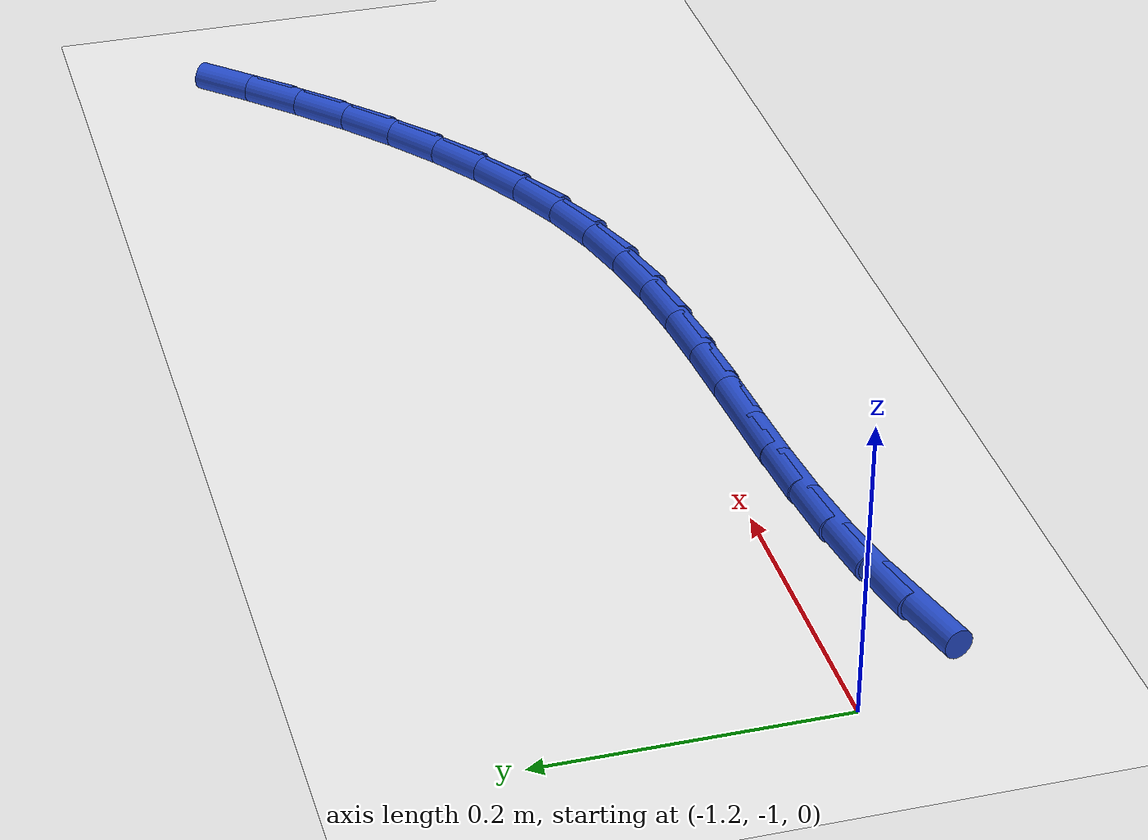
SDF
<sdf version="1.6">
 <world name="default">
  <model name="ground_plane">
   <static>1</static>
   <link name="link">
    <collision name="collision">
     <geometry><plane><normal>0 0 1</normal><size>100 100</size></plane></geometry>
     <surface><friction><ode><mu>100</mu><mu2>50</mu2></ode></friction></surface>
    </collision>
    <visual name="visual">
     <cast_shadows>0</cast_shadows>
     <geometry><plane><normal>0 0 1</normal><size>100 100</size></plane></geometry>
     <material>
      <script><uri>file://media/materials/scripts/gazebo.material</uri><name>Gazebo/WhiteGlow</name></script>
     </material>
    </visual>
   </link>
  </model>
  <model name="line">
   <link name="link_120">
    <pose>-1.1284918307968983 -1.0642170427071524 0.01 0 1.57 0.261809667981587</pose>
    <collision name="collision">
     <geometry><cylinder><radius>0.01</radius><length>0.08</length></cylinder></geometry>
    </collision>
    <visual name="visual">
     <material>
      <script><name>Gazebo/Blue</name><uri>file://media/materials/scripts/gazebo.material</uri></script>
     </material>
     <geometry><cylinder><radius>0.01</radius><length>0.08</length></cylinder></geometry>
    </visual>
   </link>
   <link name="link_121">
    <pose>-1.085188650665745 -1.0526135134340247 0.01 0 1.57 0.201005334930292</pose>
    <collision name="collision">
     <geometry><cylinder><radius>0.01</radius><length>0.08</length></cylinder></geometry>
    </collision>
    <visual name="visual">
     <material>
      <script><name>Gazebo/Blue</name><uri>file://media/materials/scripts/gazebo.material</uri></script>
     </material>
     <geometry><cylinder><radius>0.01</radius><length>0.08</length></cylinder></geometry>
    </visual>
   </link>
   <link name="link_122">
    <pose>-1.0415564830416149 -1.0437231584494366 0.01 0 1.57 0.14411846866232558</pose>
    <collision name="collision">
     <geometry><cylinder><radius>0.01</radius><length>0.08</length></cylinder></geometry>
    </collision>
    <visual name="visual">
     <material>
      <script><name>Gazebo/Blue</name><uri>file://media/materials/scripts/gazebo.material</uri></script>
     </material>
     <geometry><cylinder><radius>0.01</radius><length>0.08</length></cylinder></geometry>
    </visual>
   </link>
   <link name="link_123">
    <pose>-0.9977095868538004 -1.0373598945126175 0.01 0 1.57 0.1024602161143574</pose>
    <collision name="collision">
     <geometry><cylinder><radius>0.01</radius><length>0.08</length></cylinder></geometry>
    </collision>
    <visual name="visual">
     <material>
      <script><name>Gazebo/Blue</name><uri>file://media/materials/scripts/gazebo.material</uri></script>
     </material>
     <geometry><cylinder><radius>0.01</radius><length>0.08</length></cylinder></geometry>
    </visual>
   </link>
   <link name="link_124">
    <pose>-0.9538041714547479 -1.0328455276763489 0.01 0 1.57 0.07627994414742517</pose>
    <collision name="collision">
     <geometry><cylinder><radius>0.01</radius><length>0.08</length></cylinder></geometry>
    </collision>
    <visual name="visual">
     <material>
      <script><name>Gazebo/Blue</name><uri>file://media/materials/scripts/gazebo.material</uri></script>
     </material>
     <geometry><cylinder><radius>0.01</radius><length>0.08</length></cylinder></geometry>
    </visual>
   </link>
   <link name="link_125">
    <pose>-0.9099968259271598 -1.0294974094656317 0.01 0 1.57 0.06567673464792564</pose>
    <collision name="collision">
     <geometry><cylinder><radius>0.01</radius><length>0.08</length></cylinder></geometry>
    </collision>
    <visual name="visual">
     <material>
      <script><name>Gazebo/Blue</name><uri>file://media/materials/scripts/gazebo.material</uri></script>
     </material>
     <geometry><cylinder><radius>0.01</radius><length>0.08</length></cylinder></geometry>
    </visual>
   </link>
   <link name="link_126">
    <pose>-0.866444139353739 -1.0266328914054648 0.01 0 1.57 0.07089314677968686</pose>
    <collision name="collision">
     <geometry><cylinder><radius>0.01</radius><length>0.08</length></cylinder></geometry>
    </collision>
    <visual name="visual">
     <material>
      <script><name>Gazebo/Blue</name><uri>file://media/materials/scripts/gazebo.material</uri></script>
     </material>
     <geometry><cylinder><radius>0.01</radius><length>0.08</length></cylinder></geometry>
    </visual>
   </link>
   <link name="link_127">
    <pose>-0.82330270081719 -1.0235693250208493 0.01 0 1.57 0.0924053276561132</pose>
    <collision name="collision">
     <geometry><cylinder><radius>0.01</radius><length>0.08</length></cylinder></geometry>
    </collision>
    <visual name="visual">
     <material>
      <script><name>Gazebo/Blue</name><uri>file://media/materials/scripts/gazebo.material</uri></script>
     </material>
     <geometry><cylinder><radius>0.01</radius><length>0.08</length></cylinder></geometry>
    </visual>
   </link>
   <link name="link_128">
    <pose>-0.7807290994002156 -1.0196240618367844 0.01 0 1.57 0.13090110365155744</pose>
    <collision name="collision">
     <geometry><cylinder><radius>0.01</radius><length>0.08</length></cylinder></geometry>
    </collision>
    <visual name="visual">
     <material>
      <script><name>Gazebo/Blue</name><uri>file://media/materials/scripts/gazebo.material</uri></script>
     </material>
     <geometry><cylinder><radius>0.01</radius><length>0.08</length></cylinder></geometry>
    </visual>
   </link>
   <link name="link_129">
    <pose>-0.7388799241855184 -1.0141144533782704 0.01 0 1.57 0.18711757937518583</pose>
    <collision name="collision">
     <geometry><cylinder><radius>0.01</radius><length>0.08</length></cylinder></geometry>
    </collision>
    <visual name="visual">
     <material>
      <script><name>Gazebo/Blue</name><uri>file://media/materials/scripts/gazebo.material</uri></script>
     </material>
     <geometry><cylinder><radius>0.01</radius><length>0.08</length></cylinder></geometry>
    </visual>
   </link>
   <link name="link_130">
    <pose>-0.6979117642558016 -1.006357851170307 0.01 0 1.57 0.2614929031052605</pose>
    <collision name="collision">
     <geometry><cylinder><radius>0.01</radius><length>0.08</length></cylinder></geometry>
    </collision>
    <visual name="visual">
     <material>
      <script><name>Gazebo/Blue</name><uri>file://media/materials/scripts/gazebo.material</uri></script>
     </material>
     <geometry><cylinder><radius>0.01</radius><length>0.08</length></cylinder></geometry>
    </visual>
   </link>
   <link name="link_131">
    <pose>-0.657981208693768 -0.9956716067378943 0.01 0 1.57 0.35195510548336734</pose>
    <collision name="collision">
     <geometry><cylinder><radius>0.01</radius><length>0.08</length></cylinder></geometry>
    </collision>
    <visual name="visual">
     <material>
      <script><name>Gazebo/Blue</name><uri>file://media/materials/scripts/gazebo.material</uri></script>
     </material>
     <geometry><cylinder><radius>0.01</radius><length>0.08</length></cylinder></geometry>
    </visual>
   </link>
   <link name="link_132">
    <pose>-0.6192310039931542 -0.9814407608779474 0.01 0 1.57 0.44188750816453903</pose>
    <collision name="collision">
     <geometry><cylinder><radius>0.01</radius><length>0.08</length></cylinder></geometry>
    </collision>
    <visual name="visual">
     <material>
      <script><name>Gazebo/Blue</name><uri>file://media/materials/scripts/gazebo.material</uri></script>
     </material>
     <geometry><cylinder><radius>0.01</radius><length>0.08</length></cylinder></geometry>
    </visual>
   </link>
   <link name="link_133">
    <pose>-0.5816763424746548 -0.9636740851882427 0.01 0 1.57 0.5222467102421179</pose>
    <collision name="collision">
     <geometry><cylinder><radius>0.01</radius><length>0.08</length></cylinder></geometry>
    </collision>
    <visual name="visual">
     <material>
      <script><name>Gazebo/Blue</name><uri>file://media/materials/scripts/gazebo.material</uri></script>
     </material>
     <geometry><cylinder><radius>0.01</radius><length>0.08</length></cylinder></geometry>
    </visual>
   </link>
   <link name="link_134">
    <pose>-0.5452636161508239 -0.9427167798621353 0.01 0 1.57 0.5928748601769278</pose>
    <collision name="collision">
     <geometry><cylinder><radius>0.01</radius><length>0.08</length></cylinder></geometry>
    </collision>
    <visual name="visual">
     <material>
      <script><name>Gazebo/Blue</name><uri>file://media/materials/scripts/gazebo.material</uri></script>
     </material>
     <geometry><cylinder><radius>0.01</radius><length>0.08</length></cylinder></geometry>
    </visual>
   </link>
   <link name="link_135">
    <pose>-0.5099385483054283 -0.9189173151290151 0.01 0 1.57 0.6541352727891057</pose>
    <collision name="collision">
     <geometry><cylinder><radius>0.01</radius><length>0.08</length></cylinder></geometry>
    </collision>
    <visual name="visual">
     <material>
      <script><name>Gazebo/Blue</name><uri>file://media/materials/scripts/gazebo.material</uri></script>
     </material>
     <geometry><cylinder><radius>0.01</radius><length>0.08</length></cylinder></geometry>
    </visual>
   </link>
   <link name="link_136">
    <pose>-0.47564686222223407 -0.8926241612182721 0.01 0 1.57 0.7066281578076947</pose>
    <collision name="collision">
     <geometry><cylinder><radius>0.01</radius><length>0.08</length></cylinder></geometry>
    </collision>
    <visual name="visual">
     <material>
      <script><name>Gazebo/Blue</name><uri>file://media/materials/scripts/gazebo.material</uri></script>
     </material>
     <geometry><cylinder><radius>0.01</radius><length>0.08</length></cylinder></geometry>
    </visual>
   </link>
   <link name="link_137">
    <pose>-0.442334281185009 -0.8641857883592973 0.01 0 1.57 0.7510371747045114</pose>
    <collision name="collision">
     <geometry><cylinder><radius>0.01</radius><length>0.08</length></cylinder></geometry>
    </collision>
    <visual name="visual">
     <material>
      <script><name>Gazebo/Blue</name><uri>file://media/materials/scripts/gazebo.material</uri></script>
     </material>
     <geometry><cylinder><radius>0.01</radius><length>0.08</length></cylinder></geometry>
    </visual>
   </link>
   <link name="link_138">
    <pose>-0.4099465284775194 -0.8339506667814806 0.01 0 1.57 0.7880278629117071</pose>
    <collision name="collision">
     <geometry><cylinder><radius>0.01</radius><length>0.08</length></cylinder></geometry>
    </collision>
    <visual name="visual">
     <material>
      <script><name>Gazebo/Blue</name><uri>file://media/materials/scripts/gazebo.material</uri></script>
     </material>
     <geometry><cylinder><radius>0.01</radius><length>0.08</length></cylinder></geometry>
    </visual>
   </link>
   <link name="link_139">
    <pose>-0.37842932738353174 -0.8022672667142118 0.01 0 1.57 0.8181864480913628</pose>
    <collision name="collision">
     <geometry><cylinder><radius>0.01</radius><length>0.08</length></cylinder></geometry>
    </collision>
    <visual name="visual">
     <material>
      <script><name>Gazebo/Blue</name><uri>file://media/materials/scripts/gazebo.material</uri></script>
     </material>
     <geometry><cylinder><radius>0.01</radius><length>0.08</length></cylinder></geometry>
    </visual>
   </link>
  </model>
 </world>
</sdf>
